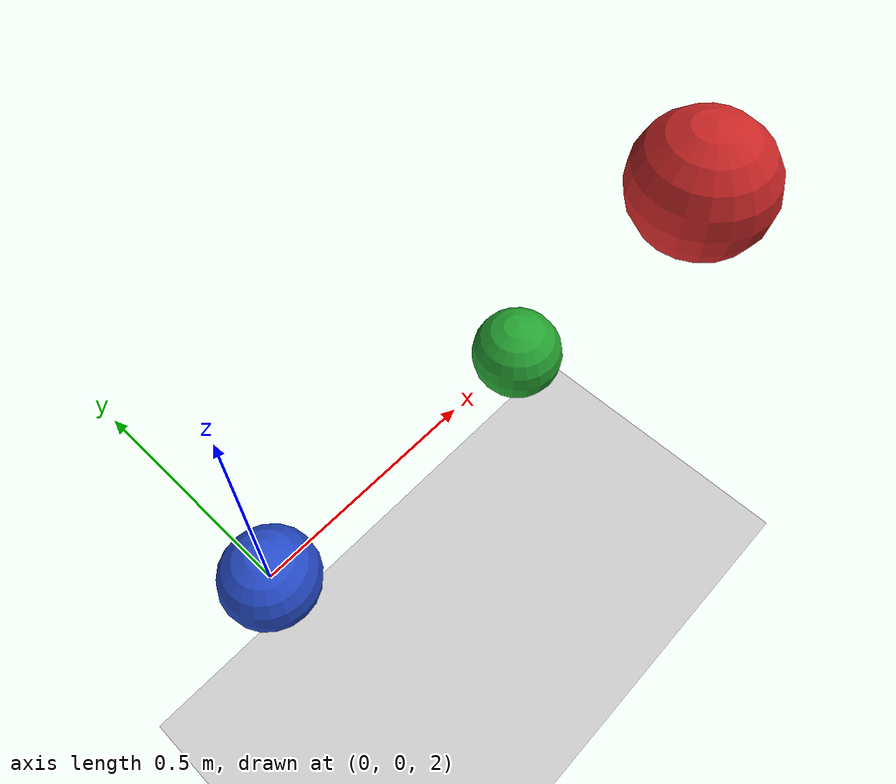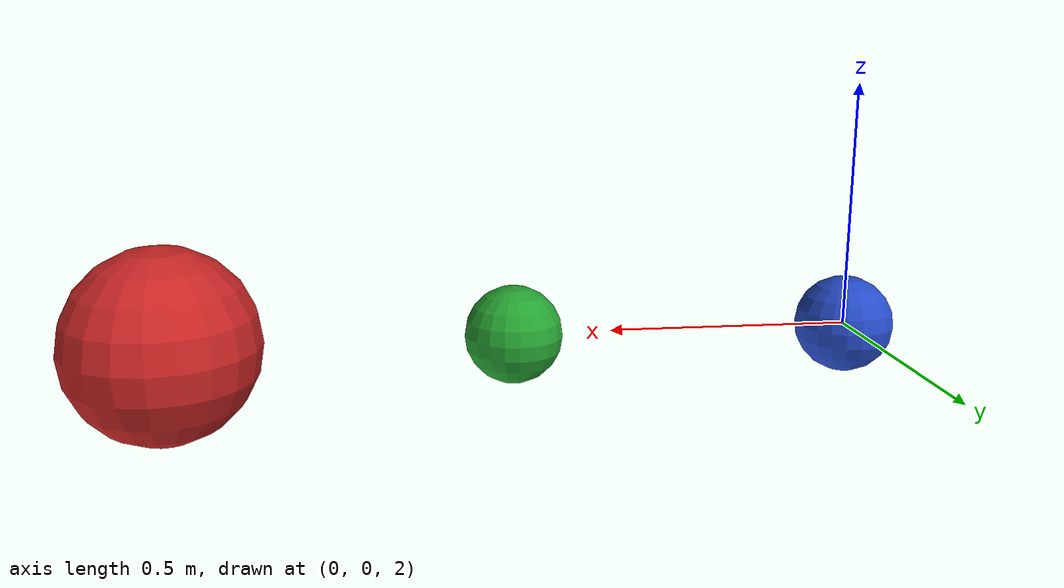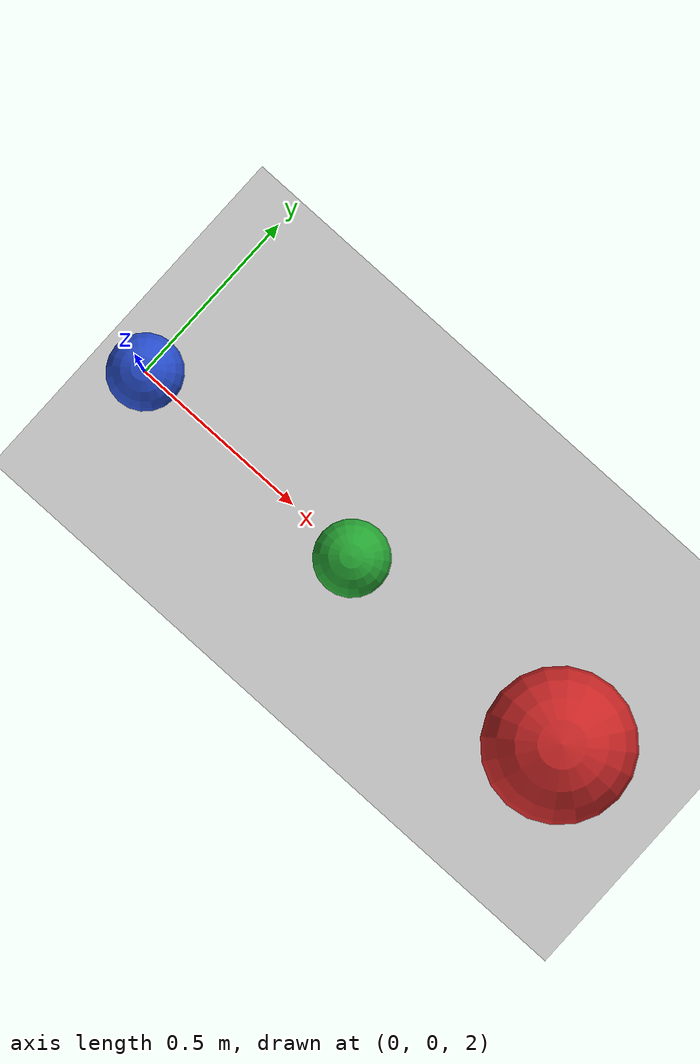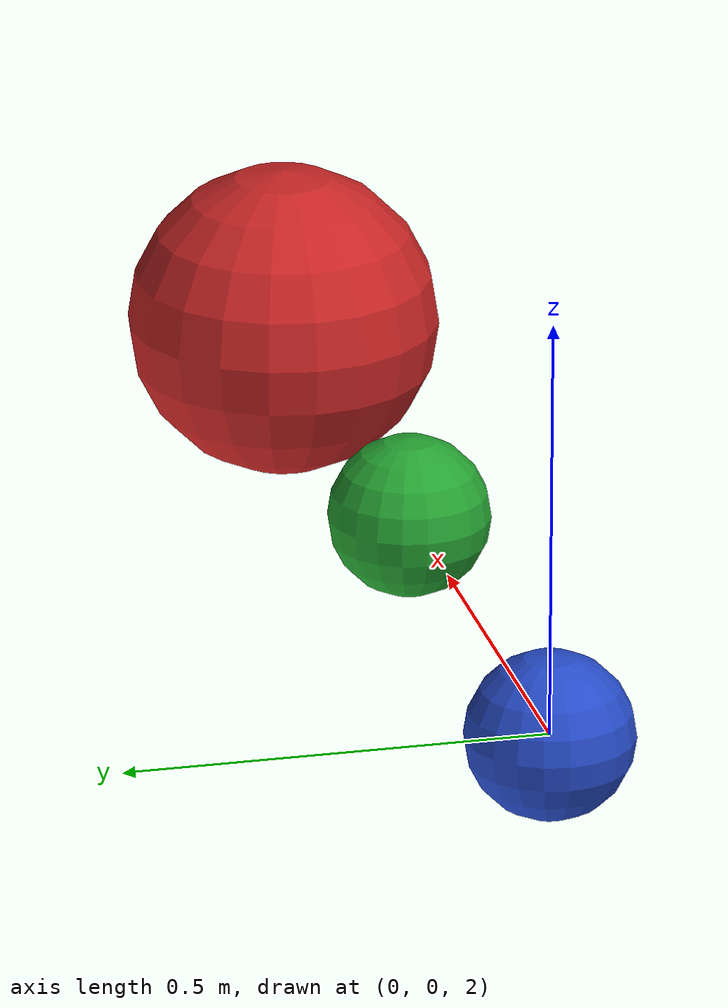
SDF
<?xml version="1.0"?>
<sdf version="1.6">
  <world name="three_balls_demo">

    <!-- 物理引擎 -->
    <physics type="ode">
      <max_step_size>0.001</max_step_size>
      <real_time_factor>1.0</real_time_factor>
      <real_time_update_rate>1000</real_time_update_rate>
      <gravity>0 0 -9.8066</gravity>
    </physics>

    <!-- 场景 -->
    <scene>
      <ambient>0.4 0.4 0.4 1.0</ambient>
      <background>0.7 0.7 0.7 1.0</background>
      <shadows>true</shadows>
    </scene>

    <!-- 太阳光 -->
    <light type="directional" name="sun">
      <cast_shadows>true</cast_shadows>
      <pose>0 0 10 0 0 0</pose>
      <diffuse>0.8 0.8 0.8 1</diffuse>
      <specular>0.2 0.2 0.2 1</specular>
      <direction>-0.5 0.1 -0.9</direction>
    </light>

    <!-- 地面 -->
    <model name="ground_plane">
      <static>true</static>
      <link name="link">
        <collision name="collision">
          <geometry>
            <plane>
              <normal>0 0 1</normal>
              <size>100 100</size>
            </plane>
          </geometry>
          <surface>
            <friction>
              <ode>
                <mu>100</mu>
                <mu2>50</mu2>
              </ode>
            </friction>
            <bounce>
              <restitution_coefficient>0.3</restitution_coefficient>
            </bounce>
          </surface>
        </collision>
        <visual name="visual">
          <cast_shadows>false</cast_shadows>
          <geometry>
            <plane>
              <normal>0 0 1</normal>
              <size>100 100</size>
            </plane>
          </geometry>
          <material>
            <script>
              <uri>file://media/materials/scripts/gazebo.material</uri>
              <name>Gazebo/Grey</name>
            </script>
          </material>
        </visual>
      </link>
    </model>

    <!-- 小球1：正常球 — 碰撞体 = 视觉几何 (radius=0.1m) -->
    <model name="normal_ball">
      <static>false</static>
      <pose>0 0 2 0 0 0</pose>
      <link name="link">
        <inertial>
          <mass>1.0</mass>
          <inertia>
            <ixx>0.004</ixx>
            <ixy>0</ixy>
            <ixz>0</ixz>
            <iyy>0.004</iyy>
            <iyz>0</iyz>
            <izz>0.004</izz>
          </inertia>
        </inertial>
        <collision name="collision">
          <geometry>
            <sphere>
              <radius>0.1</radius>
            </sphere>
          </geometry>
          <surface>
            <bounce>
              <restitution_coefficient>0.7</restitution_coefficient>
            </bounce>
          </surface>
        </collision>
        <!-- 视觉半径 = 碰撞半径，显示为蓝色 -->
        <visual name="visual">
          <geometry>
            <sphere>
              <radius>0.1</radius>
            </sphere>
          </geometry>
          <material>
            <script>
              <uri>file://media/materials/scripts/gazebo.material</uri>
              <name>Gazebo/Blue</name>
            </script>
          </material>
        </visual>
      </link>
    </model>

    <!-- 小球2：碰撞体 > 视觉几何 — 碰撞radius=0.2m，视觉radius=0.1m -->
    <!-- 现象：两球看起来还没接触就被弹开 -->
    <model name="large_collision_ball">
      <static>false</static>
      <pose>0.7 0 2 0 0 0</pose>
      <link name="link">
        <inertial>
          <mass>1.0</mass>
          <inertia>
            <ixx>0.004</ixx>
            <ixy>0</ixy>
            <ixz>0</ixz>
            <iyy>0.004</iyy>
            <iyz>0</iyz>
            <izz>0.004</izz>
          </inertia>
        </inertial>
        <!-- 碰撞半径是视觉的2倍 -->
        <collision name="collision">
          <geometry>
            <sphere>
              <radius>0.2</radius>
            </sphere>
          </geometry>
          <surface>
            <bounce>
              <restitution_coefficient>0.7</restitution_coefficient>
            </bounce>
          </surface>
        </collision>
        <!-- 视觉半径仅0.1m，看起来比碰撞体小，显示为绿色 -->
        <visual name="visual">
          <geometry>
            <sphere>
              <radius>0.1</radius>
            </sphere>
          </geometry>
          <material>
            <script>
              <uri>file://media/materials/scripts/gazebo.material</uri>
              <name>Gazebo/Green</name>
            </script>
          </material>
        </visual>
      </link>
    </model>

    <!-- 小球3：视觉几何 > 碰撞体 — 碰撞radius=0.1m，视觉radius=0.2m -->
    <!-- 现象：两球看起来已重叠穿插，但物理上还没接触 -->
    <model name="large_visual_ball">
      <static>false</static>
      <pose>1.4 0 2 0 0 0</pose>
      <link name="link">
        <inertial>
          <mass>1.0</mass>
          <inertia>
            <ixx>0.004</ixx>
            <ixy>0</ixy>
            <ixz>0</ixz>
            <iyy>0.004</iyy>
            <iyz>0</iyz>
            <izz>0.004</izz>
          </inertia>
        </inertial>
        <!-- 碰撞半径仅0.1m -->
        <collision name="collision">
          <geometry>
            <sphere>
              <radius>0.1</radius>
            </sphere>
          </geometry>
          <surface>
            <bounce>
              <restitution_coefficient>0.7</restitution_coefficient>
            </bounce>
          </surface>
        </collision>
        <!-- 视觉半径0.2m，看起来比碰撞体大，显示为红色 -->
        <visual name="visual">
          <geometry>
            <sphere>
              <radius>0.2</radius>
            </sphere>
          </geometry>
          <material>
            <script>
              <uri>file://media/materials/scripts/gazebo.material</uri>
              <name>Gazebo/Red</name>
            </script>
          </material>
        </visual>
      </link>
    </model>

  </world>
</sdf>
